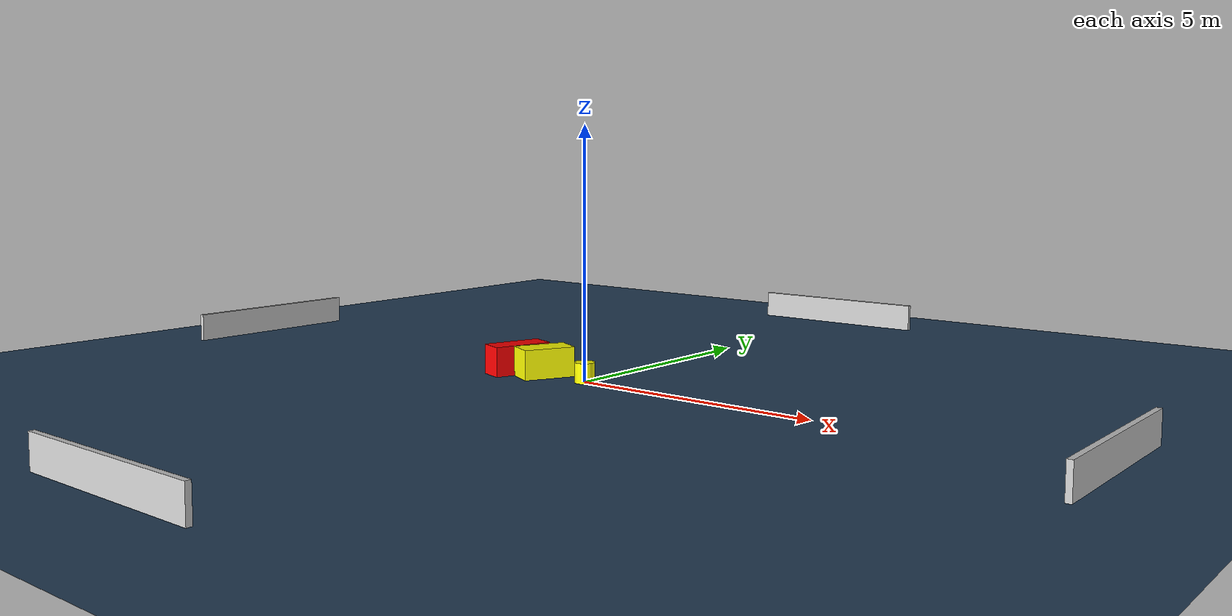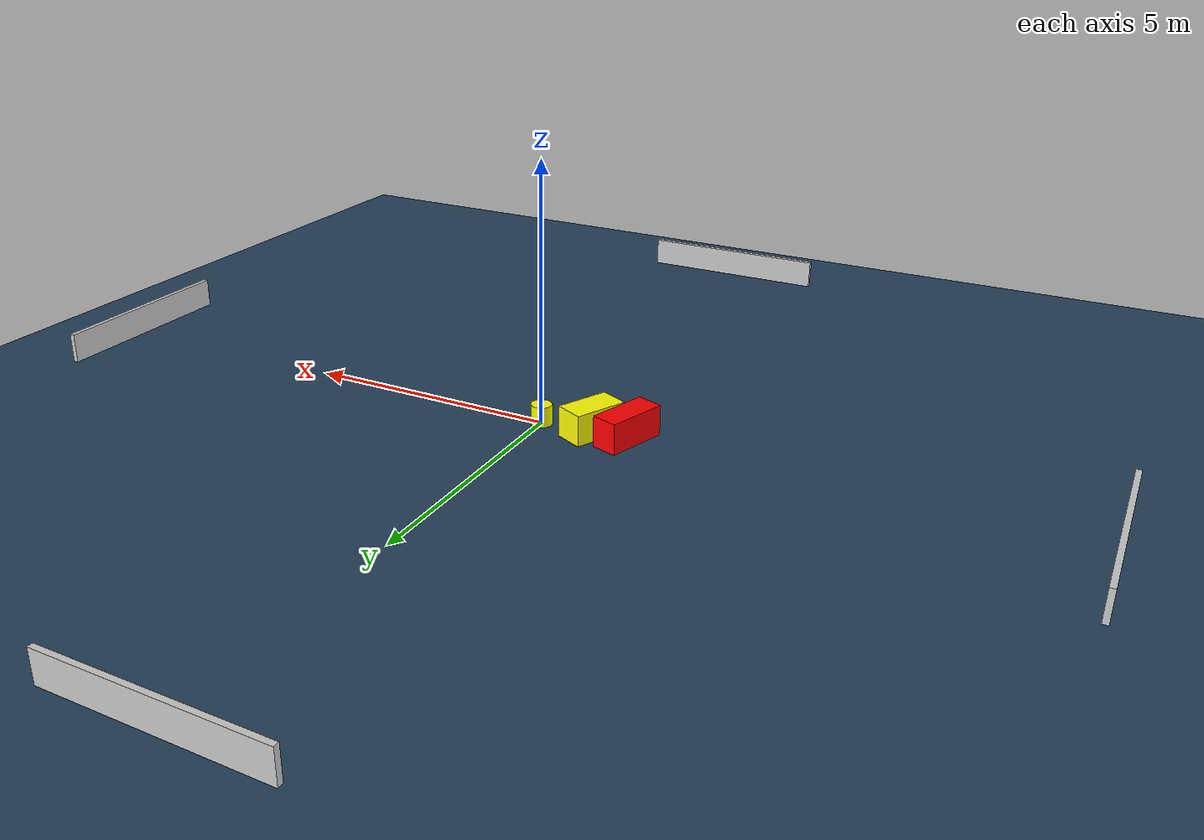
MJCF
<?xml version="1.0" ?>
<mujoco model="generated_environment">
  <option timestep="0.01" integrator="RK4" cone="elliptic"/>
  <default>
    <geom density="1"/>
  </default>
  <asset>
    <texture builtin="gradient" height="3072" name="skybox" rgb1="0.3 0.5 0.7" rgb2="0 0 0" type="skybox" width="512"/>
    <texture builtin="checker" height="300" name="groundplane" rgb1="0.2 0.3 0.4" rgb2="0.1 0.2 0.3" type="2d" width="300"/>
    <material name="groundplane" reflectance="0.2" texrepeat="5 5" texture="groundplane"/>
  </asset>
  <worldbody>
    <light dir="0 0 -1" directional="true" pos="0 0 1.5"/>
    <geom condim="3" friction="0.5 0.005 0.001" material="groundplane" name="floor" pos="0 0 0" size="0 0 0.05" type="plane"/>
    <body name="walls">
      <geom name="wall_1" condim="4" pos="-10.0 0.0 0.3" rgba="0.800000011920929 0.800000011920929 0.800000011920929 1.0" size="0.05 2.0 0.3" type="box"/>
      <geom name="wall_2" condim="4" pos="10.0 0.0 0.3" rgba="0.800000011920929 0.800000011920929 0.800000011920929 1.0" size="0.05 2.0 0.3" type="box"/>
      <geom name="wall_3" condim="4" pos="0.0 -10.0 0.3" rgba="0.800000011920929 0.800000011920929 0.800000011920929 1.0" size="2.0 0.05 0.3" type="box"/>
      <geom name="wall_4" condim="4" pos="0.0 10.0 0.3" rgba="0.800000011920929 0.800000011920929 0.800000011920929 1.0" size="2.0 0.05 0.3" type="box"/>
    </body>
    <body name="robot">
      <joint name="joint_x" type="slide" pos="0 0 0" axis="1 0 0"/>
      <joint name="joint_y" type="slide" pos="0 0 0" axis="0 1 0"/>
      <geom name="robot" type="cylinder" pos="0.0 0.0 0.2" size="0.2 0.2 0.0" mass="5.0" friction="1.0 0.005 0.0001" condim="4" rgba="1.0 1.0 0.0 1.0"/>
    </body>
    <body name="obstacle_1_movable">
      <geom name="obstacle_1_movable" condim="4" pos="-1.012653246926799 -0.043031251989047795 0.3" euler="0 0 64.68285222101896" friction="0.0 0.005 0.001" rgba="1.0 1.0 0.0 1.0" size="0.5310688908615186 0.285048324958471 0.3" type="box" mass="0.1"/>
      <joint type="free"/>
    </body>
    <body name="obstacle_2_static">
      <geom name="obstacle_2_static" condim="4" pos="-1.699093901732976 -0.09922995131133086 0.3" euler="0 0 71.91895466836161" friction="0.0 0.005 0.001" rgba="1.0 0.0 0.0 1.0" size="0.6082149972137767 0.25704208919351484 0.3" type="box"/>
    </body>
  </worldbody>
  <actuator>
    <motor name="actuator_x" joint="joint_x" gear="1" ctrlrange="-1 1"/>
    <motor name="actuator_y" joint="joint_y" gear="1" ctrlrange="-1 1"/>
  </actuator>
</mujoco>
